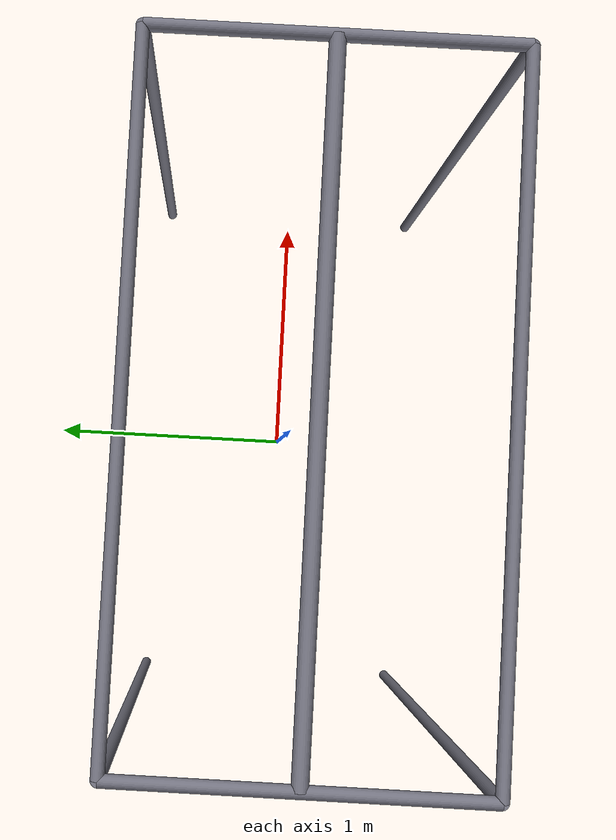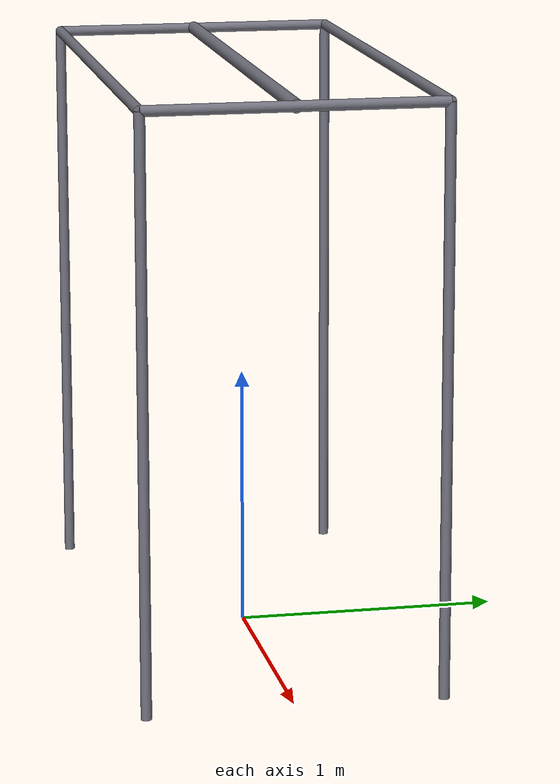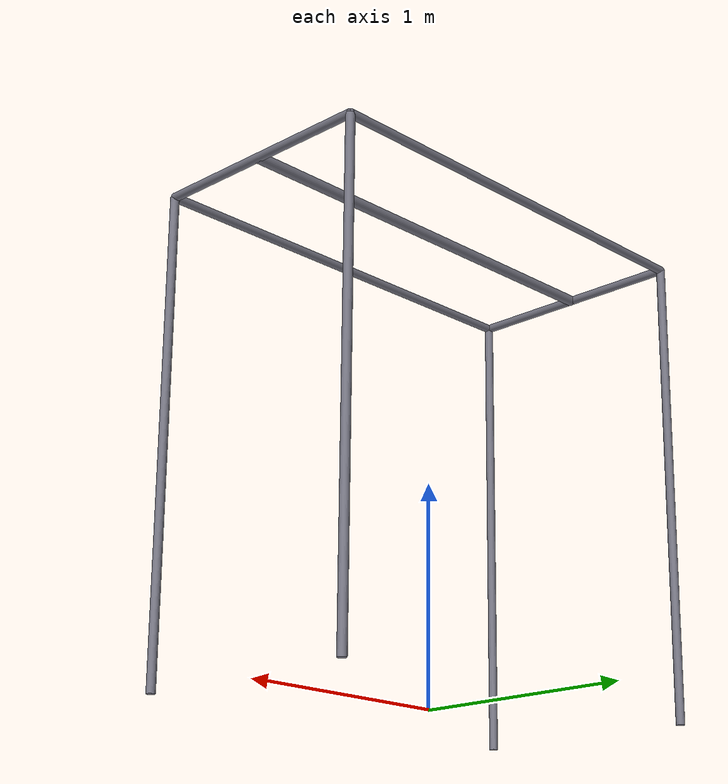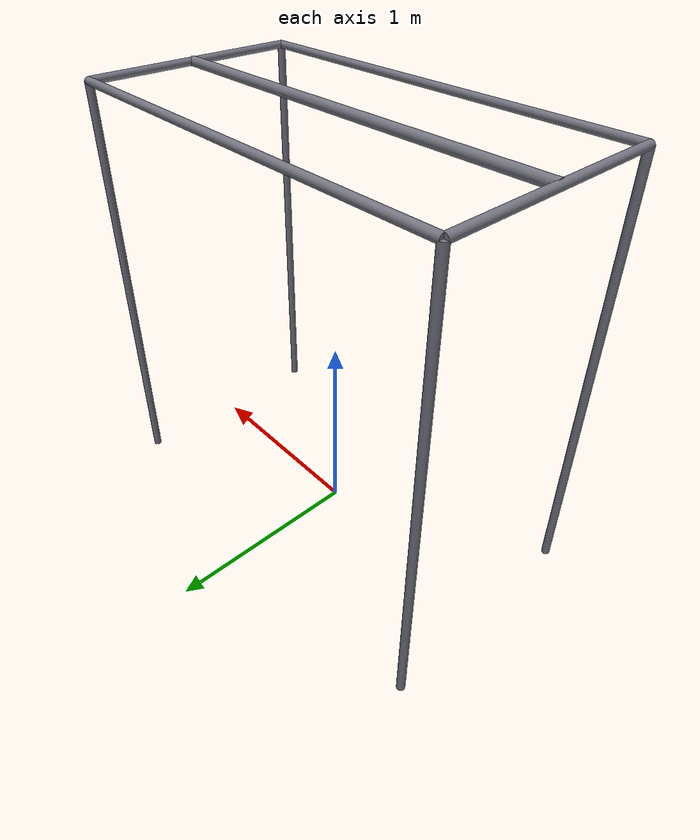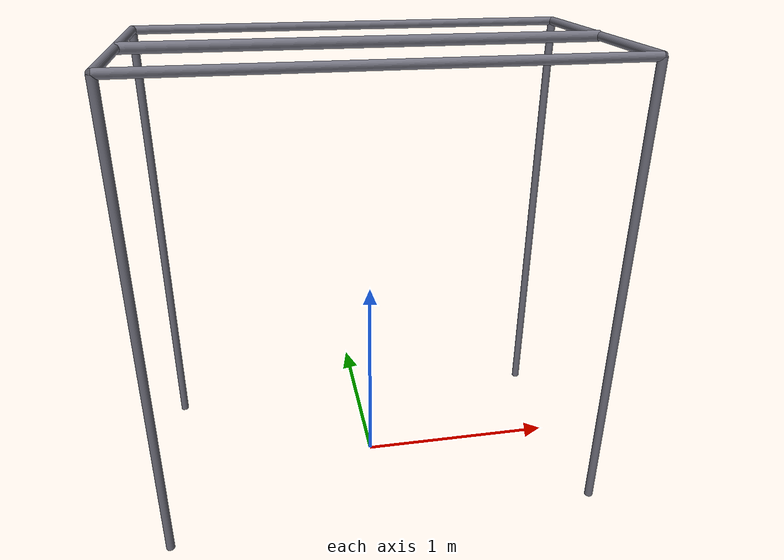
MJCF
<mujoco>
  <asset>
    <material name="cage_steel"
              rgba="0.45 0.45 0.50 1"
              specular="0.5"
              shininess="0.4"/>
    <material name="camera_housing"
              rgba="0.08 0.08 0.08 1"
              specular="0.25"
              shininess="0.3"/>
  </asset>

  <worldbody>

    <body name="cage" pos="0 0 0">

      <!-- ── 4 corner posts (round tube, radius=0.02 m) ─────────────── -->
      <geom name="post_fl" type="cylinder"
            fromto="-1.05  0.55 0  -1.05  0.55 2.2"
            size="0.02" material="cage_steel"
            contype="0" conaffinity="0"/>
      <geom name="post_fr" type="cylinder"
            fromto=" 1.05  0.55 0   1.05  0.55 2.2"
            size="0.02" material="cage_steel"
            contype="0" conaffinity="0"/>
      <geom name="post_bl" type="cylinder"
            fromto="-1.05 -0.55 0  -1.05 -0.55 2.2"
            size="0.02" material="cage_steel"
            contype="0" conaffinity="0"/>
      <geom name="post_br" type="cylinder"
            fromto=" 1.05 -0.55 0   1.05 -0.55 2.2"
            size="0.02" material="cage_steel"
            contype="0" conaffinity="0"/>

      <!-- ── Top perimeter frame ────────────────────────────────────── -->
      <geom name="rail_front" type="cylinder"
            fromto="-1.05  0.55 2.2   1.05  0.55 2.2"
            size="0.02" material="cage_steel"
            contype="0" conaffinity="0"/>
      <geom name="rail_back" type="cylinder"
            fromto="-1.05 -0.55 2.2   1.05 -0.55 2.2"
            size="0.02" material="cage_steel"
            contype="0" conaffinity="0"/>
      <geom name="rail_left" type="cylinder"
            fromto="-1.05 -0.55 2.2  -1.05  0.55 2.2"
            size="0.02" material="cage_steel"
            contype="0" conaffinity="0"/>
      <geom name="rail_right" type="cylinder"
            fromto=" 1.05 -0.55 2.2   1.05  0.55 2.2"
            size="0.02" material="cage_steel"
            contype="0" conaffinity="0"/>

      <!-- ── Camera-mount X-rail (Y=0 centre line, Z=2.2 m) ────────── -->
      <!-- Cameras hang from this rail; arm cannot reach this height.    -->
      <geom name="rail_cam_x" type="cylinder"
            fromto="-1.05 0 2.2   1.05 0 2.2"
            size="0.025" material="cage_steel"
            contype="0" conaffinity="0"/>

      <body name="cam_mount_overhead" pos="0.1 -0.05 2.0">
        <camera name="cam_overhead"
                pos="0 0 0"
                xyaxes="1 0 0  0 -1 0"
                fovy="75"/>
      </body>

      <body name="cam_mount_side" pos="1.4 -0.3 1.35">
        <camera name="cam_side"
                pos="0 0 0"
                xyaxes="0 -1 0  -0.306 0 0.952"
                fovy="65"/>
      </body>

    </body><!-- cage -->

  </worldbody>
</mujoco>
